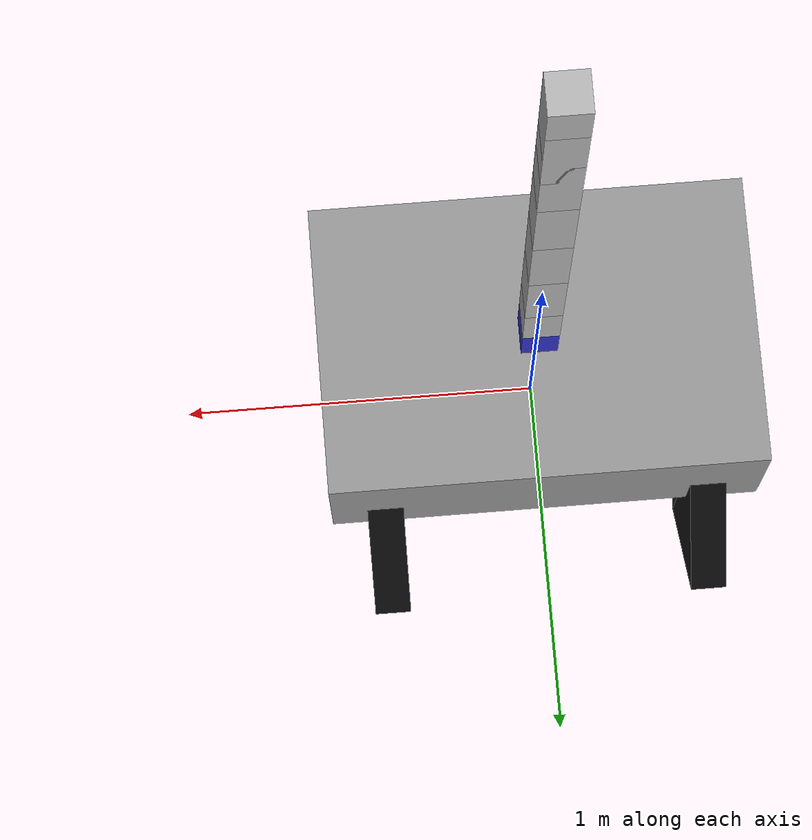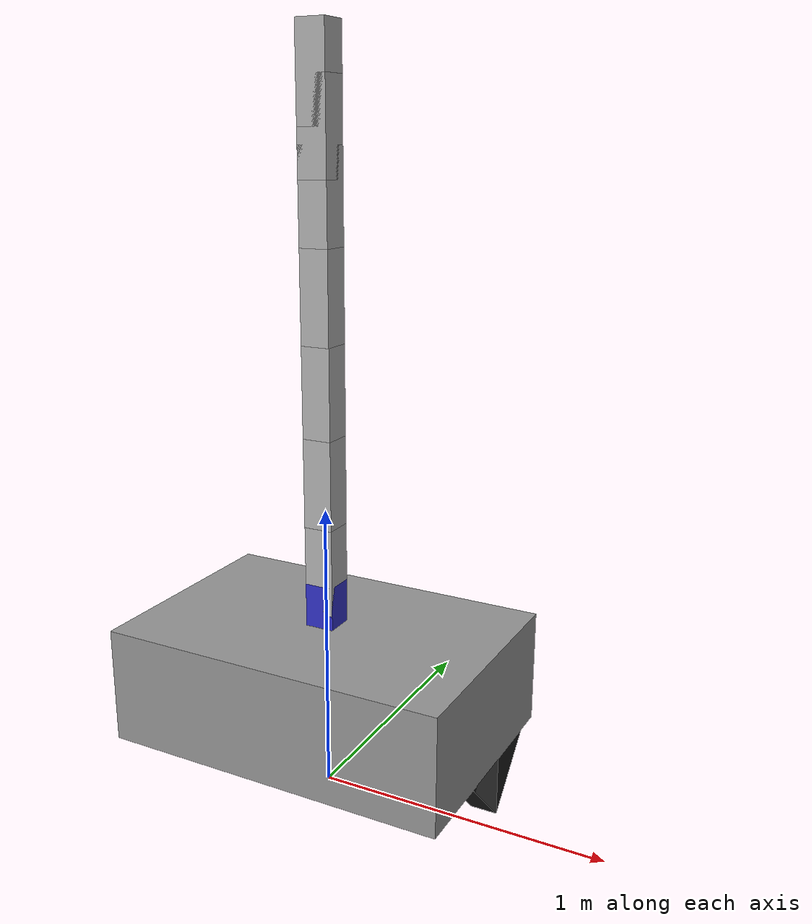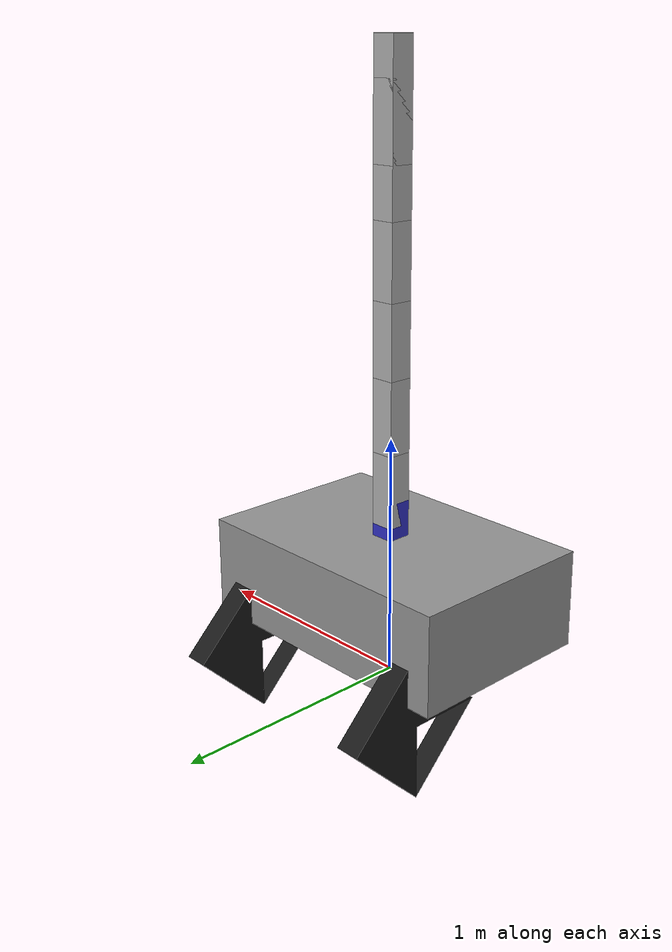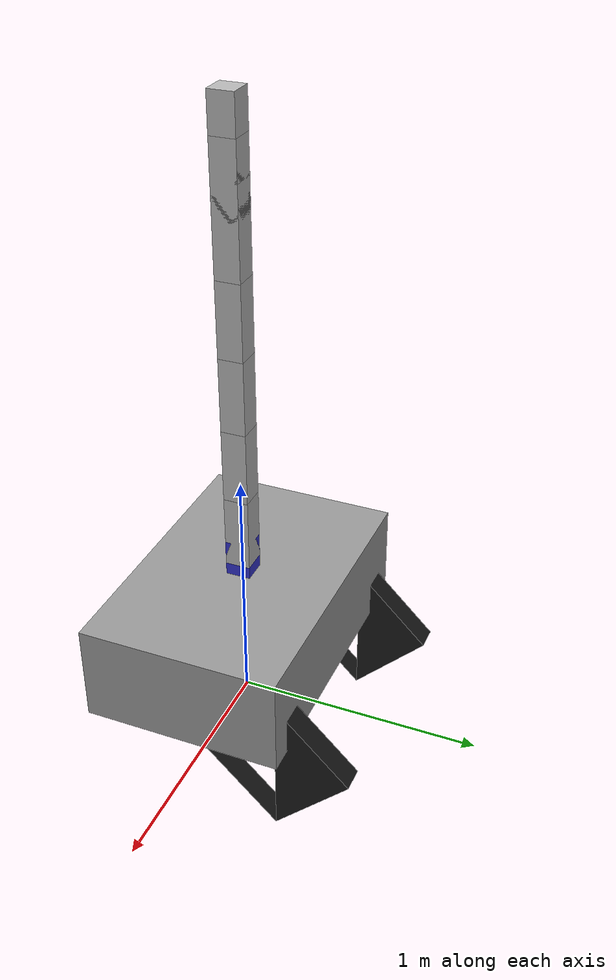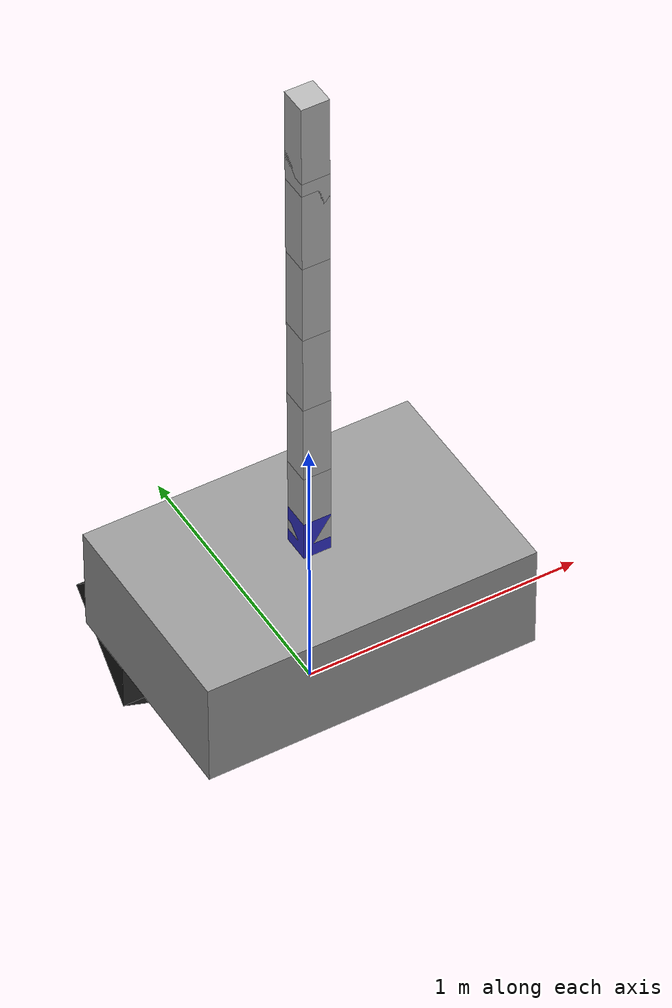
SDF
<?xml version="1.0"?>
<sdf version="1.9">
  <world name="amiga_test_world">
    <plugin name="ros_gz_sim" filename="libgazebo_ros_factory.so"/>
    <gravity>0 0 -9.81</gravity>
    <magnetic_field>6e-6 2.3e-5 -4.2e-5</magnetic_field>
    <atmosphere type="adiabatic"/>
    <physics name="default_physics" type="ignored">
      <real_time_update_rate>1000</real_time_update_rate>
      <max_step_size>0.001</max_step_size>
    </physics>
    <gui fullscreen="0">
      <camera name="default">
        <pose>2 0 1.5 0 -0.2 -1.57</pose>
        <view_controller>orbit</view_controller>
        <projection_type>perspective</projection_type>
      </camera>
    </gui>

    <include>
      <uri>model://amiga_kinova</uri>
      <name>amiga_kinova</name>
      <pose>0 0 0 0 0 0</pose>
    </include>

    <light type="directional" name="sun">
      <cast_shadows>true</cast_shadows>
      <pose>0 0 10 0 0 0</pose>
      <diffuse>1 1 1 1</diffuse>
      <specular>0.5 0.5 0.5 1</specular>
      <attenuation>
        <range>100</range>
        <constant>0.9</constant>
        <linear>0.01</linear>
        <quadratic>0.001</quadratic>
      </attenuation>
      <direction>-0.5 0.5 -1</direction>
    </light>
  </world>
</sdf>

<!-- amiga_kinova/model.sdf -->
<sdf version="1.9">
  <model name="amiga_kinova">
    <pose>0 0 0 0 0 0</pose>
    <static>false</static>
    <link name="base_link">
      <pose>0 0 0.2 0 0 0</pose>
      <inertial>
        <mass>120.0</mass>
        <inertia>
          <ixx>10.0</ixx>
          <iyy>12.0</iyy>
          <izz>8.0</izz>
          <ixy>0</ixy>
          <ixz>0</ixz>
          <iyz>0</iyz>
        </inertia>
      </inertial>
      <collision name="base_collision">
        <geometry>
          <mesh>
            <uri>meshes/amiga_body.stl</uri>
          </mesh>
        </geometry>
        <pose>0 0 0 0 0 0</pose>
      </collision>
      <visual name="base_visual">
        <geometry>
          <mesh>
            <uri>meshes/amiga_body.stl</uri>
          </mesh>
        </geometry>
        <material>
          <ambient>0.2 0.2 0.2 1</ambient>
          <diffuse>0.6 0.6 0.6 1</diffuse>
        </material>
        <pose>0 0 0 0 0 0</pose>
      </visual>
    </link>

    <link name="left_wheel_link">
      <pose>-0.45 0.35 0.1 0 1.5708 0</pose>
      <inertial>
        <mass>5.0</mass>
        <inertia>
          <ixx>0.1</ixx>
          <iyy>0.1</iyy>
          <izz>0.05</izz>
          <ixy>0</ixy>
          <ixz>0</ixz>
          <iyz>0</iyz>
        </inertia>
      </inertial>
      <collision name="left_wheel_collision">
        <geometry>
          <mesh>
            <uri>meshes/amiga_wheel.stl</uri>
          </mesh>
        </geometry>
      </collision>
      <visual name="left_wheel_visual">
        <geometry>
          <mesh>
            <uri>meshes/amiga_wheel.stl</uri>
          </mesh>
        </geometry>
        <material>
          <ambient>0.1 0.1 0.1 1</ambient>
          <diffuse>0.1 0.1 0.1 1</diffuse>
        </material>
      </visual>
    </link>

    <link name="right_wheel_link">
      <pose>0.45 0.35 0.1 0 1.5708 0</pose>
      <inertial>
        <mass>5.0</mass>
        <inertia>
          <ixx>0.1</ixx>
          <iyy>0.1</iyy>
          <izz>0.05</izz>
          <ixy>0</ixy>
          <ixz>0</ixz>
          <iyz>0</iyz>
        </inertia>
      </inertial>
      <collision name="right_wheel_collision">
        <geometry>
          <mesh>
            <uri>meshes/amiga_wheel.stl</uri>
          </mesh>
        </geometry>
      </collision>
      <visual name="right_wheel_visual">
        <geometry>
          <mesh>
            <uri>meshes/amiga_wheel.stl</uri>
          </mesh>
        </geometry>
        <material>
          <ambient>0.1 0.1 0.1 1</ambient>
          <diffuse>0.1 0.1 0.1 1</diffuse>
        </material>
      </visual>
    </link>

    <joint name="left_wheel_joint" type="continuous">
      <parent>base_link</parent>
      <child>left_wheel_link</child>
      <pose>-0.45 0.35 0.0 0 0 0</pose>
      <axis>
        <xyz>0 1 0</xyz>
        <limit>
          <velocity>10</velocity>
          <effort>120</effort>
        </limit>
        <dynamics>
          <damping>0.1</damping>
        </dynamics>
      </axis>
    </joint>

    <joint name="right_wheel_joint" type="continuous">
      <parent>base_link</parent>
      <child>right_wheel_link</child>
      <pose>0.45 0.35 0.0 0 0 0</pose>
      <axis>
        <xyz>0 1 0</xyz>
        <limit>
          <velocity>10</velocity>
          <effort>120</effort>
        </limit>
        <dynamics>
          <damping>0.1</damping>
        </dynamics>
      </axis>
    </joint>

    <!-- Kinova Gen3 simplified links -->
    <link name="kinova_base_link">
      <pose>0 0 0.45 0 0 0</pose>
      <inertial>
        <mass>8.5</mass>
        <inertia>
          <ixx>0.2</ixx>
          <iyy>0.18</iyy>
          <izz>0.2</izz>
          <ixy>0</ixy>
          <ixz>0</ixz>
          <iyz>0</iyz>
        </inertia>
      </inertial>
      <collision name="kinova_base_collision">
        <geometry>
          <mesh>
            <uri>meshes/kinova_link.stl</uri>
          </mesh>
        </geometry>
      </collision>
      <visual name="kinova_base_visual">
        <geometry>
          <mesh>
            <uri>meshes/kinova_link.stl</uri>
          </mesh>
        </geometry>
        <material>
          <ambient>0.1 0.1 0.4 1</ambient>
          <diffuse>0.2 0.2 0.8 1</diffuse>
        </material>
      </visual>
    </link>

    <joint name="kinova_joint_1" type="revolute">
      <parent>base_link</parent>
      <child>kinova_base_link</child>
      <pose>0 0 0.4 0 0 0</pose>
      <axis>
        <xyz>0 0 1</xyz>
        <limit>
          <lower>-3.14</lower>
          <upper>3.14</upper>
          <velocity>1.57</velocity>
          <effort>120</effort>
        </limit>
      </axis>
    </joint>

    <!-- Additional Kinova joints -->
    <link name="kinova_link_1">
      <pose>0 0 0.65 0 0 0</pose>
      <inertial>
        <mass>4.0</mass>
        <inertia>
          <ixx>0.05</ixx>
          <iyy>0.05</iyy>
          <izz>0.03</izz>
          <ixy>0</ixy>
          <ixz>0</ixz>
          <iyz>0</iyz>
        </inertia>
      </inertial>
      <collision name="kinova_link_1_collision">
        <geometry>
          <mesh>
            <uri>meshes/kinova_link.stl</uri>
          </mesh>
        </geometry>
      </collision>
      <visual name="kinova_link_1_visual">
        <geometry>
          <mesh>
            <uri>meshes/kinova_link.stl</uri>
          </mesh>
        </geometry>
      </visual>
    </link>

    <joint name="kinova_joint_2" type="revolute">
      <parent>kinova_base_link</parent>
      <child>kinova_link_1</child>
      <pose>0 0 0.25 0 0 0</pose>
      <axis>
        <xyz>0 1 0</xyz>
        <limit>
          <lower>-2.5</lower>
          <upper>2.5</upper>
          <velocity>1.57</velocity>
          <effort>100</effort>
        </limit>
      </axis>
    </joint>

    <link name="kinova_link_2">
      <pose>0 0 0.95 0 0 0</pose>
      <inertial>
        <mass>3.5</mass>
        <inertia>
          <ixx>0.04</ixx>
          <iyy>0.04</iyy>
          <izz>0.02</izz>
          <ixy>0</ixy>
          <ixz>0</ixz>
          <iyz>0</iyz>
        </inertia>
      </inertial>
      <collision name="kinova_link_2_collision">
        <geometry>
          <mesh>
            <uri>meshes/kinova_link.stl</uri>
          </mesh>
        </geometry>
      </collision>
      <visual name="kinova_link_2_visual">
        <geometry>
          <mesh>
            <uri>meshes/kinova_link.stl</uri>
          </mesh>
        </geometry>
      </visual>
    </link>

    <joint name="kinova_joint_3" type="revolute">
      <parent>kinova_link_1</parent>
      <child>kinova_link_2</child>
      <pose>0 0 0.3 0 0 0</pose>
      <axis>
        <xyz>0 0 1</xyz>
        <limit>
          <lower>-2.5</lower>
          <upper>2.5</upper>
          <velocity>1.57</velocity>
          <effort>90</effort>
        </limit>
      </axis>
    </joint>

    <link name="kinova_link_3">
      <pose>0 0 1.25 0 0 0</pose>
      <inertial>
        <mass>3.0</mass>
        <inertia>
          <ixx>0.03</ixx>
          <iyy>0.03</iyy>
          <izz>0.02</izz>
          <ixy>0</ixy>
          <ixz>0</ixz>
          <iyz>0</iyz>
        </inertia>
      </inertial>
      <collision name="kinova_link_3_collision">
        <geometry>
          <mesh>
            <uri>meshes/kinova_link.stl</uri>
          </mesh>
        </geometry>
      </collision>
      <visual name="kinova_link_3_visual">
        <geometry>
          <mesh>
            <uri>meshes/kinova_link.stl</uri>
          </mesh>
        </geometry>
      </visual>
    </link>

    <joint name="kinova_joint_4" type="revolute">
      <parent>kinova_link_2</parent>
      <child>kinova_link_3</child>
      <pose>0 0 0.3 0 0 0</pose>
      <axis>
        <xyz>0 1 0</xyz>
        <limit>
          <lower>-2.5</lower>
          <upper>2.5</upper>
          <velocity>1.57</velocity>
          <effort>70</effort>
        </limit>
      </axis>
    </joint>

    <link name="kinova_link_4">
      <pose>0 0 1.55 0 0 0</pose>
      <inertial>
        <mass>2.5</mass>
        <inertia>
          <ixx>0.02</ixx>
          <iyy>0.02</iyy>
          <izz>0.01</izz>
          <ixy>0</ixy>
          <ixz>0</ixz>
          <iyz>0</iyz>
        </inertia>
      </inertial>
      <collision name="kinova_link_4_collision">
        <geometry>
          <mesh>
            <uri>meshes/kinova_link.stl</uri>
          </mesh>
        </geometry>
      </collision>
      <visual name="kinova_link_4_visual">
        <geometry>
          <mesh>
            <uri>meshes/kinova_link.stl</uri>
          </mesh>
        </geometry>
      </visual>
    </link>

    <joint name="kinova_joint_5" type="revolute">
      <parent>kinova_link_3</parent>
      <child>kinova_link_4</child>
      <pose>0 0 0.3 0 0 0</pose>
      <axis>
        <xyz>0 0 1</xyz>
        <limit>
          <lower>-2.5</lower>
          <upper>2.5</upper>
          <velocity>1.57</velocity>
          <effort>50</effort>
        </limit>
      </axis>
    </joint>

    <link name="kinova_link_5">
      <pose>0 0 1.85 0 0 0</pose>
      <inertial>
        <mass>2.0</mass>
        <inertia>
          <ixx>0.015</ixx>
          <iyy>0.015</iyy>
          <izz>0.008</izz>
          <ixy>0</ixy>
          <ixz>0</ixz>
          <iyz>0</iyz>
        </inertia>
      </inertial>
      <collision name="kinova_link_5_collision">
        <geometry>
          <mesh>
            <uri>meshes/kinova_link.stl</uri>
          </mesh>
        </geometry>
      </collision>
      <visual name="kinova_link_5_visual">
        <geometry>
          <mesh>
            <uri>meshes/kinova_link.stl</uri>
          </mesh>
        </geometry>
      </visual>
    </link>

    <joint name="kinova_joint_6" type="revolute">
      <parent>kinova_link_4</parent>
      <child>kinova_link_5</child>
      <pose>0 0 0.3 0 0 0</pose>
      <axis>
        <xyz>0 1 0</xyz>
        <limit>
          <lower>-2.5</lower>
          <upper>2.5</upper>
          <velocity>1.57</velocity>
          <effort>40</effort>
        </limit>
      </axis>
    </joint>

    <link name="kinova_link_6">
      <pose>0 0 2.05 0 0 0</pose>
      <inertial>
        <mass>1.8</mass>
        <inertia>
          <ixx>0.012</ixx>
          <iyy>0.012</iyy>
          <izz>0.006</izz>
          <ixy>0</ixy>
          <ixz>0</ixz>
          <iyz>0</iyz>
        </inertia>
      </inertial>
      <collision name="kinova_link_6_collision">
        <geometry>
          <mesh>
            <uri>meshes/kinova_link.stl</uri>
          </mesh>
        </geometry>
      </collision>
      <visual name="kinova_link_6_visual">
        <geometry>
          <mesh>
            <uri>meshes/kinova_link.stl</uri>
          </mesh>
        </geometry>
      </visual>
    </link>

    <joint name="kinova_joint_7" type="revolute">
      <parent>kinova_link_5</parent>
      <child>kinova_link_6</child>
      <pose>0 0 0.2 0 0 0</pose>
      <axis>
        <xyz>0 0 1</xyz>
        <limit>
          <lower>-2.5</lower>
          <upper>2.5</upper>
          <velocity>1.57</velocity>
          <effort>30</effort>
        </limit>
      </axis>
    </joint>

    <link name="kinova_end_effector">
      <pose>0 0 2.2 0 0 0</pose>
      <inertial>
        <mass>1.0</mass>
        <inertia>
          <ixx>0.01</ixx>
          <iyy>0.01</iyy>
          <izz>0.005</izz>
          <ixy>0</ixy>
          <ixz>0</ixz>
          <iyz>0</iyz>
        </inertia>
      </inertial>
      <collision name="kinova_ee_collision">
        <geometry>
          <mesh>
            <uri>meshes/kinova_link.stl</uri>
          </mesh>
        </geometry>
      </collision>
      <visual name="kinova_ee_visual">
        <geometry>
          <mesh>
            <uri>meshes/kinova_link.stl</uri>
          </mesh>
        </geometry>
      </visual>
    </link>

    <joint name="kinova_tool_joint" type="fixed">
      <parent>kinova_link_6</parent>
      <child>kinova_end_effector</child>
      <pose>0 0 0.15 0 0 0</pose>
      <axis>
        <xyz>0 0 1</xyz>
      </axis>
    </joint>

    <plugin name="ros2_control" filename="libignition-gazebo-ros2-control-system.so">
      <parameters>../config/ros2_control.yaml</parameters>
    </plugin>
  </model>
</sdf>
